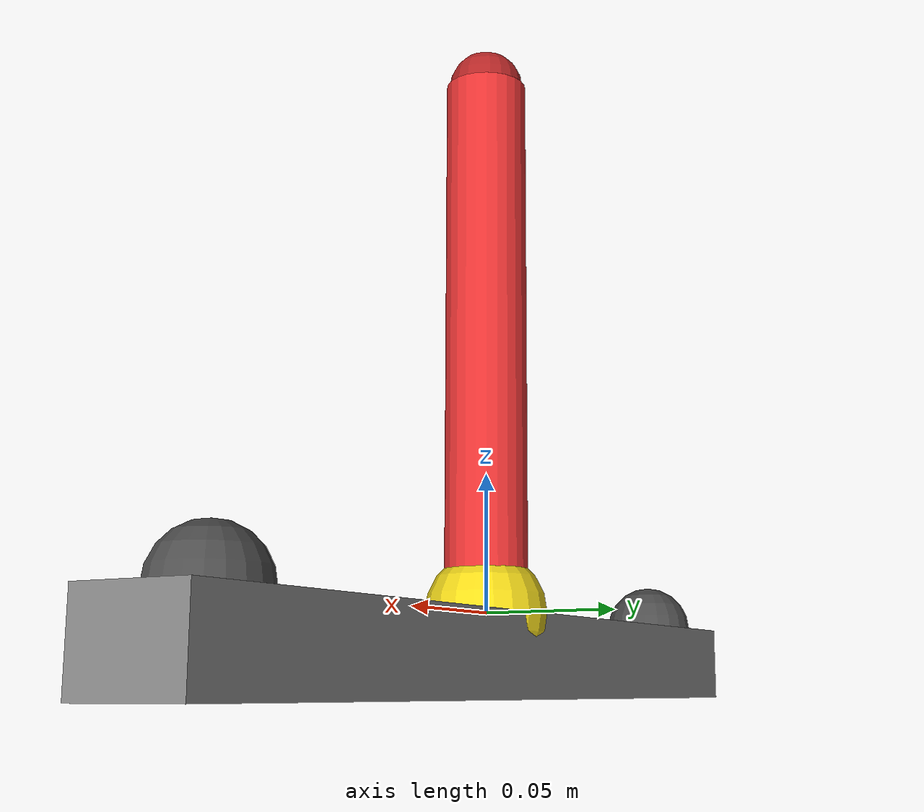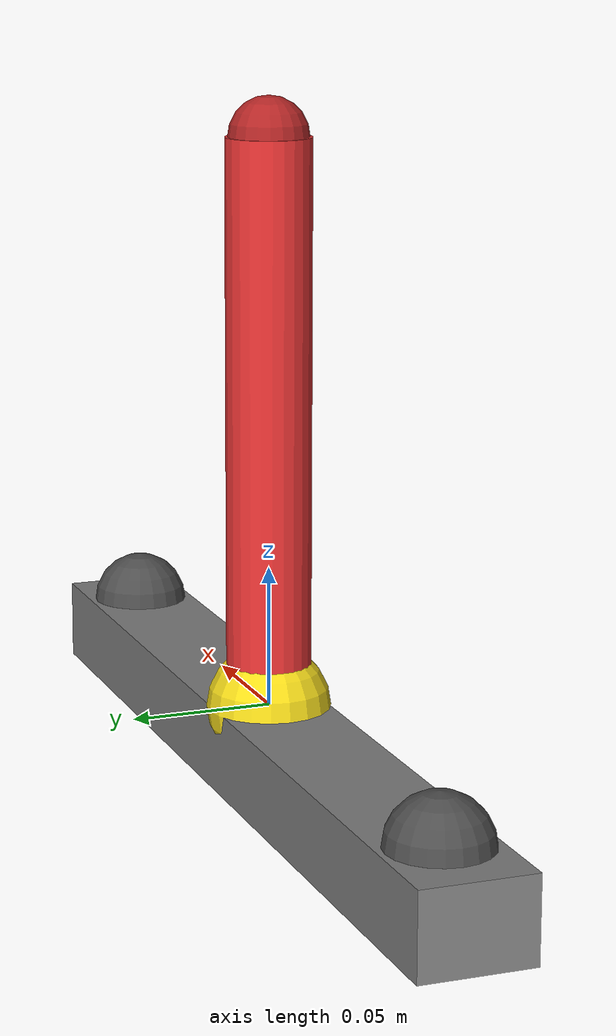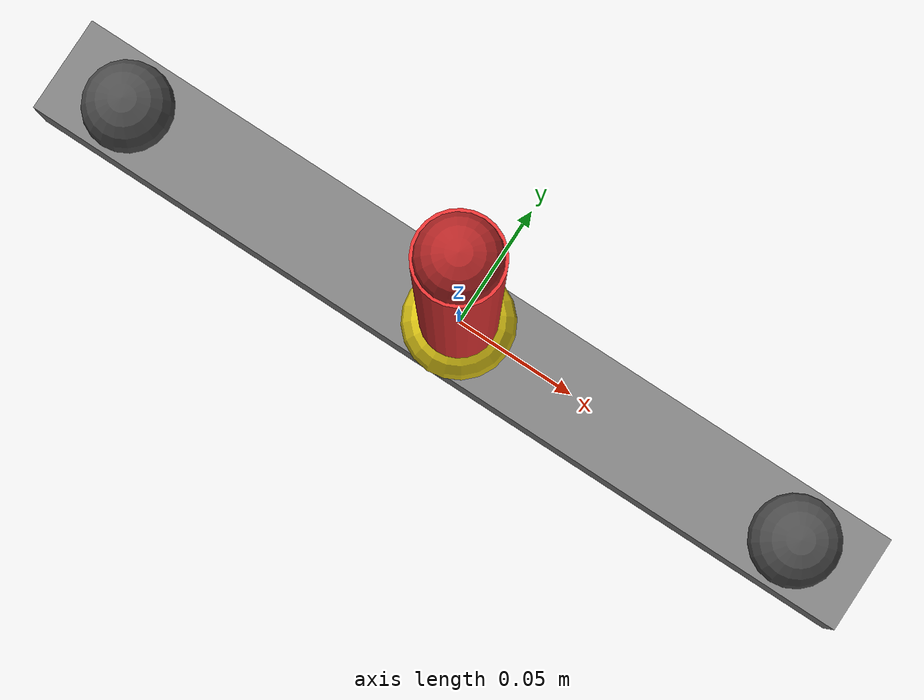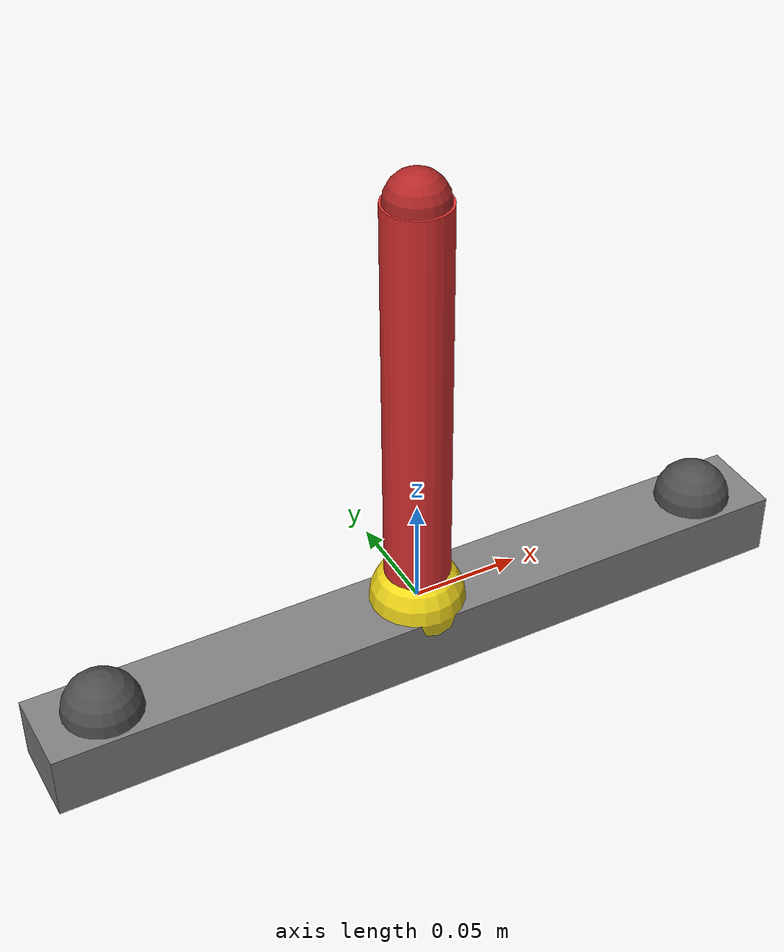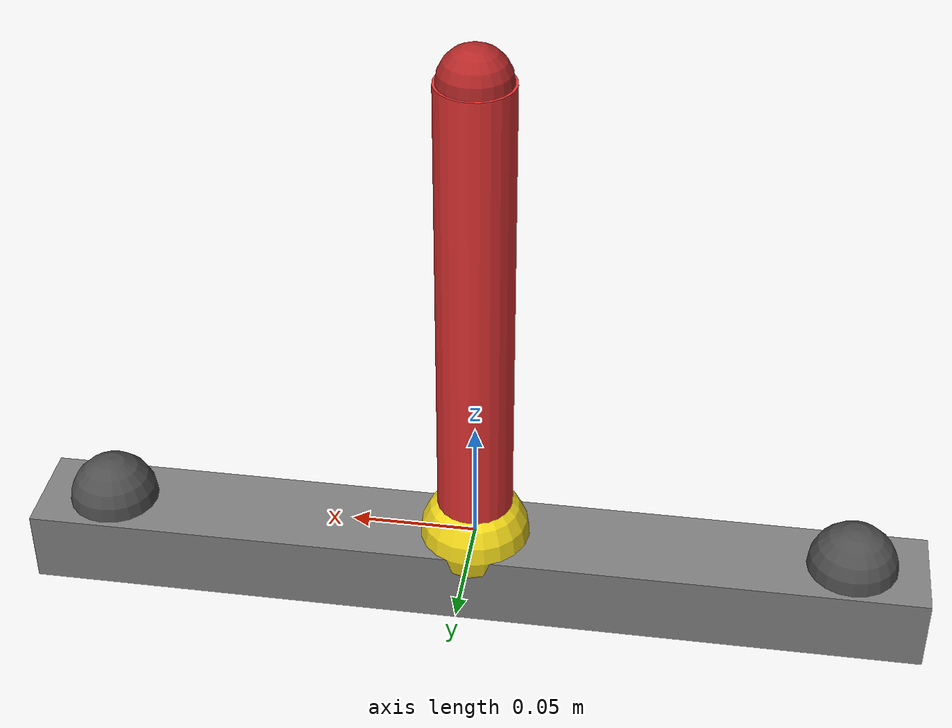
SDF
<?xml version="1.0"?>
<sdf version="1.7">
  <model name="five_bar_parallel">

    <!-- ==================== Links ==================== -->

    <!-- Ground bar (fixed base) -->
    <link name="base_link">
      <inertial>
        <pose>0 0 0 0 0 0</pose>
        <mass>5.0</mass>
        <inertia>
          <ixx>0.01</ixx><ixy>0</ixy><ixz>0</ixz>
          <iyy>0.01</iyy><iyz>0</iyz><izz>0.01</izz>
        </inertia>
      </inertial>
      <visual name="base_bar">
        <pose>0 0 -0.015 0 0 0</pose>
        <geometry>
          <box><size>0.36 0.04 0.03</size></box>
        </geometry>
        <material><diffuse>0.5 0.5 0.5 1</diffuse></material>
      </visual>
      <visual name="pivot_left">
        <pose>-0.15 0 0 0 0 0</pose>
        <geometry><sphere><radius>0.018</radius></sphere></geometry>
        <material><diffuse>0.3 0.3 0.3 1</diffuse></material>
      </visual>
      <visual name="pivot_right">
        <pose>0.15 0 0 0 0 0</pose>
        <geometry><sphere><radius>0.018</radius></sphere></geometry>
        <material><diffuse>0.3 0.3 0.3 1</diffuse></material>
      </visual>
    </link>

    <!-- Left proximal link -->
    <link name="proximal_left">
      <inertial>
        <pose>0 0 0.1 0 0 0</pose>
        <mass>0.4</mass>
        <inertia>
          <ixx>0.0014</ixx><ixy>0</ixy><ixz>0</ixz>
          <iyy>0.0014</iyy><iyz>0</iyz><izz>0.0001</izz>
        </inertia>
      </inertial>
      <visual name="bar">
        <pose>0 0 0.1 0 0 0</pose>
        <geometry>
          <cylinder><radius>0.015</radius><length>0.2</length></cylinder>
        </geometry>
        <material><diffuse>0.9 0.2 0.2 1</diffuse></material>
      </visual>
      <visual name="pivot_top">
        <pose>0 0 0.2 0 0 0</pose>
        <geometry><sphere><radius>0.014</radius></sphere></geometry>
        <material><diffuse>0.7 0.15 0.15 1</diffuse></material>
      </visual>
    </link>

    <!-- Left distal link -->
    <link name="distal_left">
      <inertial>
        <pose>0 0 0.1 0 0 0</pose>
        <mass>0.3</mass>
        <inertia>
          <ixx>0.001</ixx><ixy>0</ixy><ixz>0</ixz>
          <iyy>0.001</iyy><iyz>0</iyz><izz>0.0001</izz>
        </inertia>
      </inertial>
      <visual name="bar">
        <pose>0 0 0.1 0 0 0</pose>
        <geometry>
          <cylinder><radius>0.012</radius><length>0.2</length></cylinder>
        </geometry>
        <material><diffuse>0.95 0.55 0.1 1</diffuse></material>
      </visual>
    </link>

    <!-- End-effector (at distal_left tip) -->
    <link name="end_effector">
      <inertial>
        <pose>0 0 0 0 0 0</pose>
        <mass>0.1</mass>
        <inertia>
          <ixx>0.00001</ixx><ixy>0</ixy><ixz>0</ixz>
          <iyy>0.00001</iyy><iyz>0</iyz><izz>0.00001</izz>
        </inertia>
      </inertial>
      <visual name="sphere">
        <pose>0 0 0 0 0 0</pose>
        <geometry><sphere><radius>0.022</radius></sphere></geometry>
        <material><diffuse>0.95 0.85 0.1 1</diffuse></material>
      </visual>
    </link>

    <!-- Right proximal link -->
    <link name="proximal_right">
      <inertial>
        <pose>0 0 0.1 0 0 0</pose>
        <mass>0.4</mass>
        <inertia>
          <ixx>0.0014</ixx><ixy>0</ixy><ixz>0</ixz>
          <iyy>0.0014</iyy><iyz>0</iyz><izz>0.0001</izz>
        </inertia>
      </inertial>
      <visual name="bar">
        <pose>0 0 0.1 0 0 0</pose>
        <geometry>
          <cylinder><radius>0.015</radius><length>0.2</length></cylinder>
        </geometry>
        <material><diffuse>0.2 0.3 0.9 1</diffuse></material>
      </visual>
      <visual name="pivot_top">
        <pose>0 0 0.2 0 0 0</pose>
        <geometry><sphere><radius>0.014</radius></sphere></geometry>
        <material><diffuse>0.15 0.2 0.7 1</diffuse></material>
      </visual>
    </link>

    <!-- Right distal link -->
    <link name="distal_right">
      <inertial>
        <pose>0 0 0.1 0 0 0</pose>
        <mass>0.3</mass>
        <inertia>
          <ixx>0.001</ixx><ixy>0</ixy><ixz>0</ixz>
          <iyy>0.001</iyy><iyz>0</iyz><izz>0.0001</izz>
        </inertia>
      </inertial>
      <visual name="bar">
        <pose>0 0 0.1 0 0 0</pose>
        <geometry>
          <cylinder><radius>0.012</radius><length>0.2</length></cylinder>
        </geometry>
        <material><diffuse>0.1 0.75 0.85 1</diffuse></material>
      </visual>
      <visual name="pivot_top">
        <pose>0 0 0.2 0 0 0</pose>
        <geometry><sphere><radius>0.014</radius></sphere></geometry>
        <material><diffuse>0.1 0.6 0.7 1</diffuse></material>
      </visual>
    </link>

    <!-- ==================== Joints (spanning tree) ==================== -->

    <!-- Left proximal pivot (30° inward = positive pitch) -->
    <joint name="joint_L1" type="revolute">
      <parent>base_link</parent>
      <child>proximal_left</child>
      <pose>-0.15 0 0 0 0.5236 0</pose>
      <axis>
        <xyz>0 1 0</xyz>
        <limit>
          <lower>-2.356</lower>
          <upper>2.356</upper>
          <effort>10</effort>
          <velocity>5</velocity>
        </limit>
      </axis>
    </joint>

    <!-- Left distal pivot (compensate −15.5° so distal tilts 14.5° from vertical) -->
    <joint name="joint_L2" type="revolute">
      <parent>proximal_left</parent>
      <child>distal_left</child>
      <pose>0 0 0.2 0 -0.2709 0</pose>
      <axis>
        <xyz>0 1 0</xyz>
        <limit>
          <lower>-3.14</lower>
          <upper>3.14</upper>
          <effort>10</effort>
          <velocity>5</velocity>
        </limit>
      </axis>
    </joint>

    <!-- End-effector (fixed at distal_left tip) -->
    <joint name="joint_ee" type="fixed">
      <parent>distal_left</parent>
      <child>end_effector</child>
      <pose>0 0 0.2 0 0 0</pose>
    </joint>

    <!-- Right proximal pivot (−30° inward = negative pitch) -->
    <joint name="joint_R1" type="revolute">
      <parent>base_link</parent>
      <child>proximal_right</child>
      <pose>0.15 0 0 0 -0.5236 0</pose>
      <axis>
        <xyz>0 1 0</xyz>
        <limit>
          <lower>-2.356</lower>
          <upper>2.356</upper>
          <effort>10</effort>
          <velocity>5</velocity>
        </limit>
      </axis>
    </joint>

    <!-- Right distal pivot (compensate +15.5° so distal tilts −14.5° from vertical) -->
    <joint name="joint_R2" type="revolute">
      <parent>proximal_right</parent>
      <child>distal_right</child>
      <pose>0 0 0.2 0 0.2709 0</pose>
      <axis>
        <xyz>0 1 0</xyz>
        <limit>
          <lower>-3.14</lower>
          <upper>3.14</upper>
          <effort>10</effort>
          <velocity>5</velocity>
        </limit>
      </axis>
    </joint>

  </model>
</sdf>
